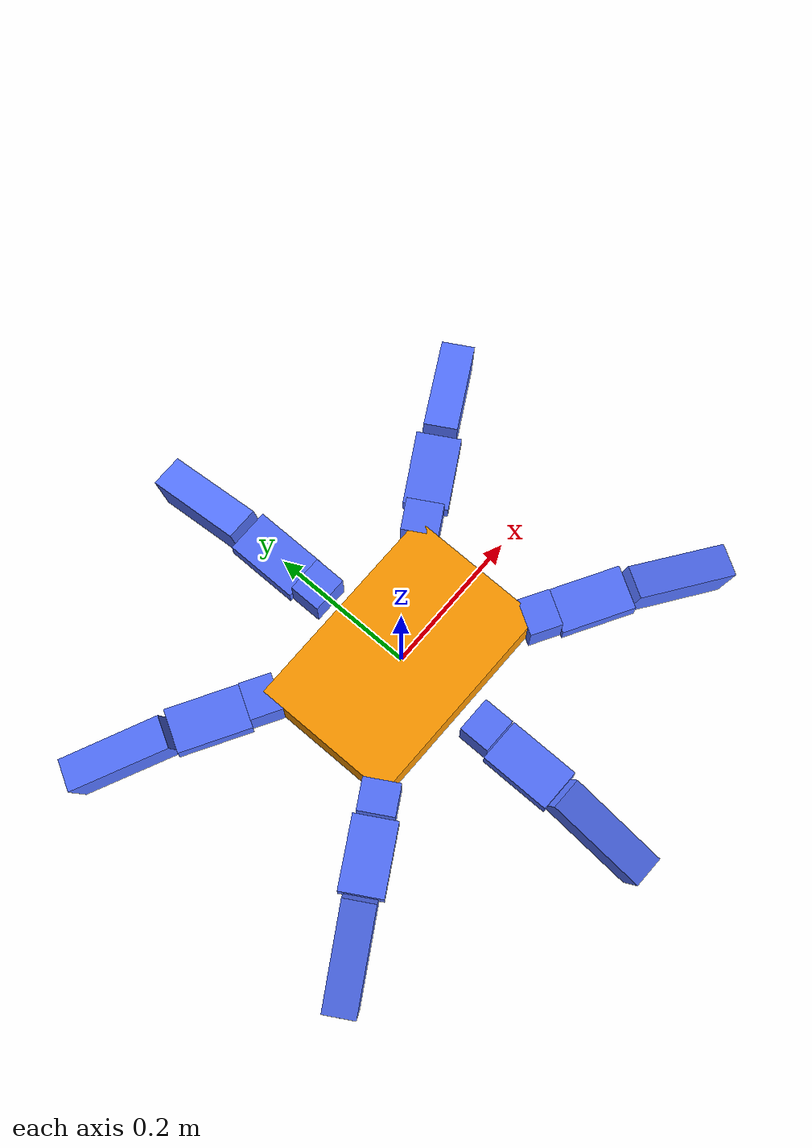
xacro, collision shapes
<?xml version="1.0"?>
<robot name="hexapod" xmlns:xacro="http://wiki.ros.org/xacro">
  <xacro:include filename="$(find antsy_description)/urdf/properties.urdf.xacro"/>

  <!-- base_footprint -->
  <link name="base_footprint" />
  <joint name="base_footprint_joint" type="fixed">
    <parent link="base_footprint" />
    <child link="base_link" />
  </joint>

  <!-- base_link -->
  <link name="base_link">
    <visual>
      <origin xyz="0 0 0" rpy="0 0 ${pi/2}" />
      <geometry>
          <mesh filename="file://$(find antsy_description)/meshes/simple_meshes/frame_simple.stl" scale="0.001 0.001 0.001"/>
      </geometry>
      <material name="frame" />
    </visual>
    <collision>
      <geometry>
        <box size="0.300 0.200 0.050" />
      </geometry>
    </collision>
    <inertial>
    <origin xyz="0.00014120578374947324 0.000907462590201314 -0.0004863329579636028" rpy="0 0 0"/>
    <mass value="0.9"/> <!-- changed from  6.980366975019921 -->
    <inertia ixx="0.035507" ixy="8e-06" ixz="-1.7e-05" iyy="0.050259" iyz="4e-06" izz="0.082758"/>
  </inertial>
  </link>

  <!-- legs -->
  <xacro:macro name="leg" params="index reflect_coxa reflect_tibia reflect_foot xyz rpy">
    <!-- leg_X: fixed to base_link -->
    <link name="leg_${index}" />
    <joint name="base_link__leg_${index}" type="fixed">
      <parent link="base_link" />
      <child link="leg_${index}" />
      <origin xyz="${xyz}" rpy="${rpy}" />
    </joint>

    <!-- leg_Xa: shoulder  -->
    <link name="leg_${index}a">
      <visual>
        <origin xyz="0 0 0" rpy="0 0 0"/>
        <geometry>
          <mesh filename="file://$(find antsy_description)/meshes/simple_meshes/coxa_simple.stl" scale="0.001 0.001 0.001"/>
        </geometry>
        <material name="feet" />
      </visual>
      <collision>
        <origin xyz="${leg_a_length/2} 0.0 0.0"/>
        <geometry>
          <box size="${leg_a_length} 0.05 0.05" />
        </geometry>
      </collision>
      <inertial>
        <mass value="0.09" /> <!-- changed from 0.06644962989519385 -->
        <origin xyz="${leg_a_length/2} 0 0" />
            <inertia ixx="3.4e-05" iyy="3.2e-05" izz="2.4e-05" ixy="-0.0" iyz="0.0" ixz="-0.0"/>
      </inertial>
    </link>
    <joint name="leg_${index}_base__leg_${index}a" type="revolute">
      <axis xyz="0 0 ${reflect_coxa}" />
      <limit lower="${joint_a_limit_lower}" upper="${joint_a_limit_upper}"
        effort="${servo_effort_limit}" velocity="${servo_velocity_limit}" />
      <parent link="leg_${index}" />
      <child link="leg_${index}a" />
      <dynamics friction="${servo_static_friction}" damping="${servo_damping_friction}" />
    </joint>

    <!-- leg_Xb: upper segment -->
    <link name="leg_${index}b">
      <visual>
        <origin xyz="0 0 0" />
        <geometry>
          <mesh filename="file://$(find antsy_description)/meshes/simple_meshes/tibia_simple.stl" scale="0.001 0.001 0.001"/>
        </geometry>
        <material name="feet" />
      </visual>
      <collision>
        <origin xyz="${leg_b_length/2} 0 0" />
        <geometry>
          <box size="${leg_b_length} 0.06 0.025" />
        </geometry>
      </collision>
      <inertial>
        <mass value="0.08" /> <!-- changed from 0.029822153915739318 -->
        <origin xyz="${leg_b_length/2} 0 0" />
        <inertia ixx="2.7e-05" iyy="1.9e-05" izz="4.1e-05" ixy="0.0" iyz="-1e-06" ixz="-0.0"/>

      </inertial>
    </link>
    <joint name="leg_${index}a__leg_${index}b" type="revolute">
      <axis xyz="0 ${reflect_tibia} 0" />
      <limit lower="${joint_b_limit_lower}" upper="${joint_b_limit_upper}"
        effort="${servo_effort_limit}" velocity="${servo_velocity_limit}" />
      <parent link="leg_${index}a" />
      <child link="leg_${index}b" />
      <origin xyz="${leg_a_length} 0 -0.010" />
      <dynamics friction="${servo_static_friction}" damping="${servo_damping_friction}" />
    </joint>

    <!-- leg_Xc: lower segment -->
    <link name="leg_${index}c">
      <visual>
        <origin xyz="0 0 0" rpy="0 -0.35 0"/>
        <geometry>
          <mesh filename="file://$(find antsy_description)/meshes/simple_meshes/foot_simple.stl" scale="0.001 0.001 0.001"/>
        </geometry>
        <material name="feet" />
      </visual>
      <visual>
        <origin xyz="${leg_c_length} 0 0" />
        <geometry>
          <sphere radius="0.0075" />
        </geometry>
        <material name="feet" />
      </visual>
      <collision>
        <origin xyz="${leg_c_length/2} 0 0" />
        <geometry>
          <box size="${leg_c_length} 0.045 0.05" />
        </geometry>
      </collision>
      <collision>
        <origin xyz="${leg_c_length} 0 0" />
        <geometry>
          <sphere radius="0.0075" />
        </geometry>
        <contact_coefficients mu="0.7" />
      </collision>
      <inertial>
        <mass value="0.030" /> <!-- changed from 0.08076187945098641 -->
        <origin xyz="${leg_c_length/2} 0 0" rpy="0 -0.35 0" />
        <inertia ixx="0.000205" iyy="3.9e-05" izz="0.000199" ixy="2e-06" iyz="4.1e-05" ixz="-0.0"/>
      </inertial>
    </link>
    <joint name="leg_${index}b__leg_${index}c" type="revolute">
      <axis xyz="0 ${reflect_foot} 0" />
      <limit lower="${joint_c_limit_lower}" upper="${joint_c_limit_upper}"
        effort="${servo_effort_limit}" velocity="${servo_velocity_limit}" />
      <parent link="leg_${index}b" />
      <child link="leg_${index}c" />
      <origin xyz="${leg_b_length} 0 0" rpy="0 0.35 0"/>
      <dynamics friction="${servo_static_friction}" damping="${servo_damping_friction}" />
    </joint>

    <!-- Link in the foot ball center to easily refer to that point in KDL -->
    <link name="foot_${index}" />
    <joint name="leg_${index}c__foot_${index}" type="fixed">
      <parent link="leg_${index}c" />
      <child link="foot_${index}" />
      <origin xyz="${leg_c_length} 0 0" rpy="0 0.4 0"/>
    </joint>

  </xacro:macro>

  <!-- Instantiate the six legs -->
  <xacro:leg index="0" reflect_coxa="1" reflect_tibia="-1" reflect_foot="1" xyz=" 0.138  0.0875 0.0" rpy="0 0 ${pi/2 - leg_spreading_angle}" />
  <xacro:leg index="1" reflect_coxa="1" reflect_tibia="-1" reflect_foot="1"  xyz=" 0.00  0.11950 0.0" rpy="0 0 ${pi/2}" />
  <xacro:leg index="2" reflect_coxa="1" reflect_tibia="-1" reflect_foot="1"  xyz="-0.138  0.0875 0.0" rpy="0 0 ${pi/2 + leg_spreading_angle}" />

  <xacro:leg index="3" reflect_coxa="1" reflect_tibia="1" reflect_foot="-1" xyz="-0.138 -0.0875 0.0" rpy="0 0 ${-pi/2 -leg_spreading_angle}" />
  <xacro:leg index="4" reflect_coxa="1" reflect_tibia="1" reflect_foot="-1" xyz=" 0.00 -0.11950 0.0" rpy="0 0 ${-pi/2}" />
  <xacro:leg index="5" reflect_coxa="1" reflect_tibia="1" reflect_foot="-1" xyz=" 0.138 -0.0875 0.0" rpy="0 0 ${-pi/2 + leg_spreading_angle}" />

  <!-- Sensors -->
  <link name="imu" />
  <joint name="base_link__imu" type="fixed">
    <parent link="base_link" />
    <child link="imu" />
    <!-- TODO set correct pose -->
    <origin xyz="0 0 0.05" />
  </joint>

</robot>

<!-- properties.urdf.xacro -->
<robot name="hexapod" xmlns:xacro="http://wiki.ros.org/xacro">
  <!-- Materials -->
  <material name="frame">
    <color rgba="1.0 0.6 0.0 1" />
  </material>
  <material name="feet">
    <color rgba="0.33 0.45 1.0 1" />
  </material>

  <!-- Parameters -->
  <xacro:arg name="servo_velocity_limit" default="5.6" />
  <xacro:arg name="servo_effort_limit" default="4.25" />
  <xacro:arg name="servo_static_friction" default="0.3" />
  <xacro:arg name="servo_damping_friction" default="0.1" />

  <xacro:property name="leg_spreading_angle" value="1.0472" />
  <xacro:property name="leg_a_length" value="0.04375" />
  <xacro:property name="leg_b_length" value="0.100" />
  <xacro:property name="leg_c_length" value="0.150" />

  <xacro:property name="servo_velocity_limit" value="$(arg servo_velocity_limit)" />
  <xacro:property name="servo_effort_limit" value="$(arg servo_effort_limit)" />
  <xacro:property name="servo_static_friction" value="$(arg servo_static_friction)" />
  <xacro:property name="servo_damping_friction" value="$(arg servo_damping_friction)" />

  <xacro:property name="joint_a_limit_lower" value="-1.5708" />
  <xacro:property name="joint_a_limit_upper" value="1.5708" />

  <xacro:property name="joint_b_limit_lower" value="-1.309" />
  <xacro:property name="joint_b_limit_upper" value="2.00713" />

  <xacro:property name="joint_c_limit_lower" value="-2.0944" />
  <xacro:property name="joint_c_limit_upper" value="2.35619" />

</robot>
